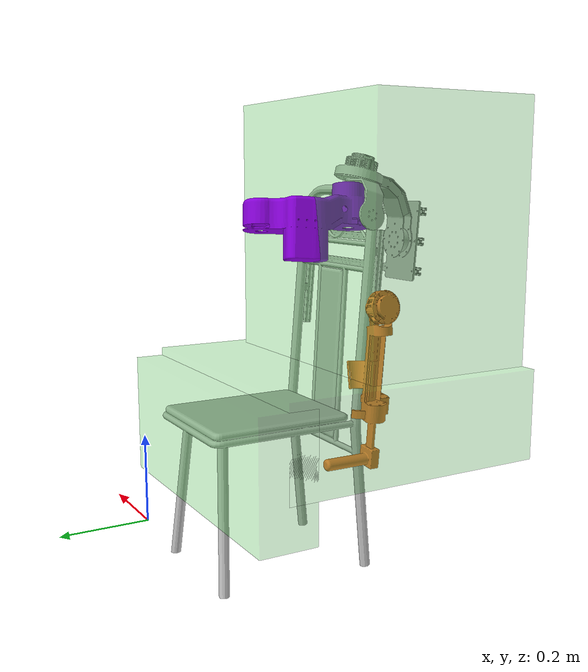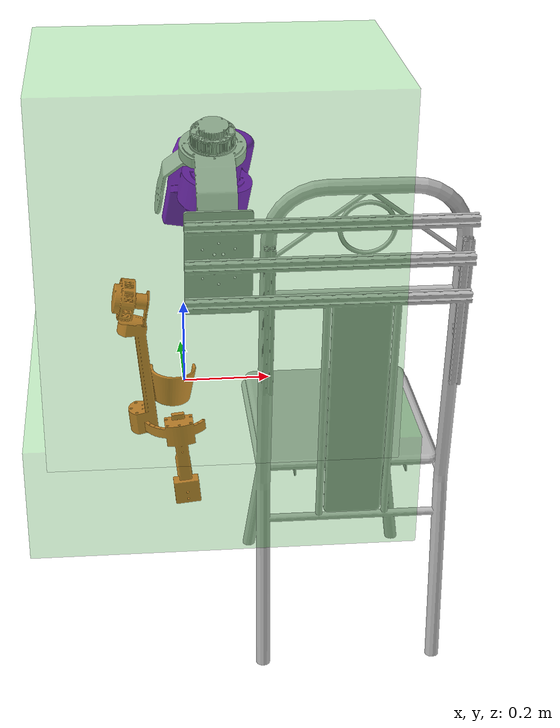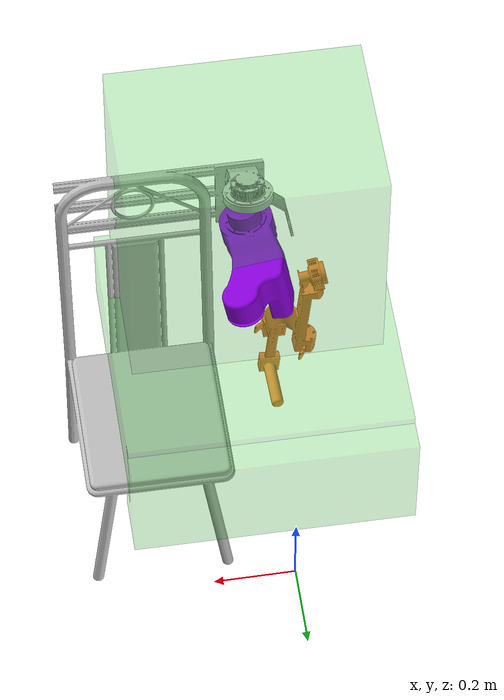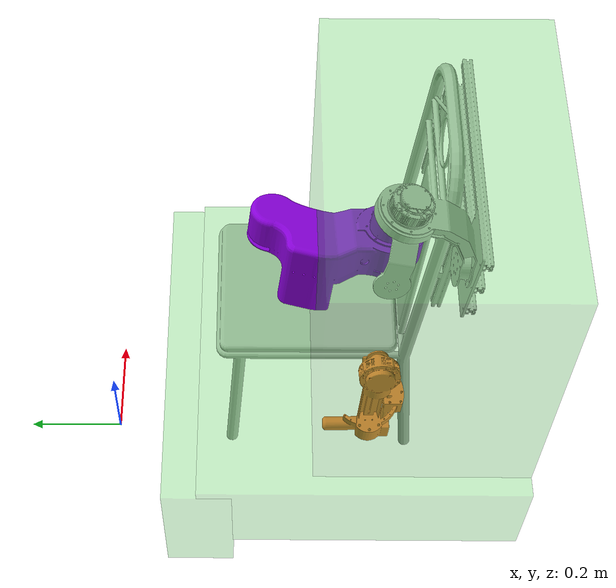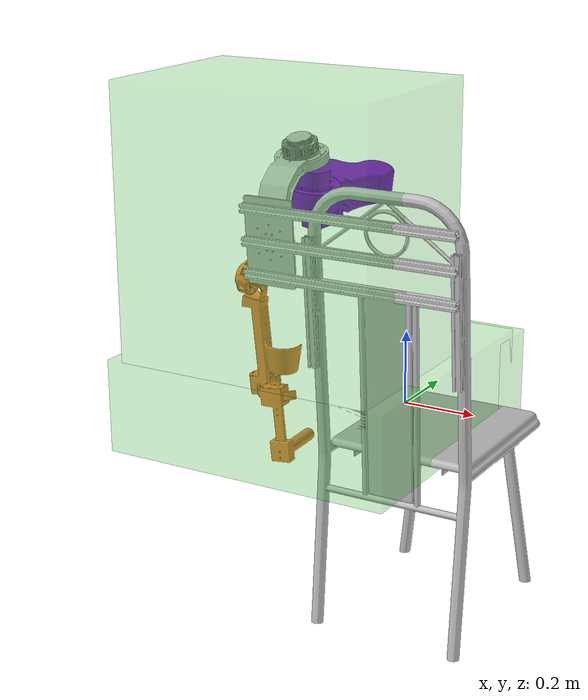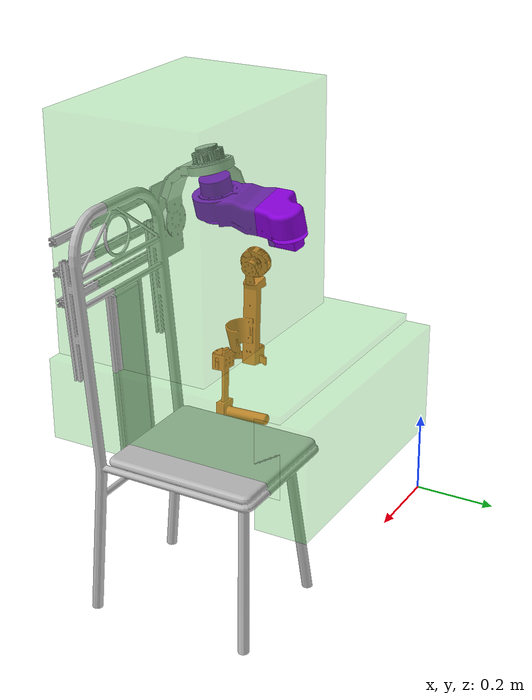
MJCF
<mujoco model="gim_arm">
  <compiler angle="radian"/>

  <asset>
    <mesh name="base_link" file="meshes/base_link.STL"/>
    <mesh name="shoulder_link" file="meshes/shoulder_link.STL"/>
    <mesh name="upper_arm_link" file="meshes/upper_arm_link.STL"/>
    <mesh name="lower_arm_link" file="meshes/lower_arm_link.STL"/>
  </asset>

  <worldbody>
    <geom name="body_than_dau" type="box" pos="0.03 -0.635 0.615" size="0.31000000000000005 0.215 0.33499999999999996" rgba="0.2 0.8 0.2 0.28" contype="2" conaffinity="1"/>
    <geom name="body_dui_ghe" type="box" pos="0.03 -0.52 0.21000000000000002" size="0.35 0.32999999999999996 0.11" rgba="0.2 0.8 0.2 0.28" contype="2" conaffinity="1"/>
    <geom name="body_cang_chan" type="box" pos="0.03 -0.19 0.15" size="0.35 0.07 0.15" rgba="0.2 0.8 0.2 0.28" contype="2" conaffinity="1"/>

    <geom pos="0 0 0" quat="0.999139 0.0414881 0 0" type="mesh" rgba="0.752941 0.752941 0.752941 1" mesh="base_link"/>
    <body name="shoulder_link" pos="0.031381 -0.538297 0.605919" quat="0.707244 0.0979564 0.692157 0.105496">
      <inertial pos="-0.166449 0.0056888 -0.0172849" quat="0.953505 0.00316386 -0.300899 -0.0166541" mass="0.190733" diaginertia="0.000256936 0.000237054 0.000102196"/>
      <joint name="base_joint" pos="0 0 0" axis="0.999316 -0.0310989 -0.0199989" range="-0.7121 1.0226" actuatorfrcrange="-5 5"/>
      <geom type="mesh" rgba="0.752941 0.752941 0.752941 1" mesh="shoulder_link"/>
      <body name="upper_arm_link" pos="-0.049966 0.001555 0.00099995" quat="0.589584 -0.488746 -0.405223 0.499311">
        <inertial pos="-0.0207367 0.102616 -0.0918424" quat="0.663565 -0.00524028 0.0607563 0.745629" mass="1.15563" diaginertia="0.00533537 0.00465501 0.00100501"/>
        <joint name="shoulder_joint" pos="0 0 0" axis="0 -1 0" range="-0.2366 1.3435" actuatorfrcrange="-40 40"/>
        <geom type="mesh" rgba="0.545098 0 0.870588 1" mesh="upper_arm_link"/>
        <body name="lower_arm_link" pos="-0.014232 0 -0.21358" quat="-0.474042 0.474045 -0.524673 -0.524674">
          <inertial pos="0.18527 0.00970989 0.0463326" quat="0.0339146 0.77458 0.0270247 0.630988" mass="0.846777" diaginertia="0.00187451 0.00160639 0.00058703"/>
          <joint name="elbow_joint" pos="0 0 0" axis="0 0 -1" range="-0.2336 1.7762" actuatorfrcrange="-5 5"/>
          <geom type="mesh" rgba="1 0.509804 0.196078 1" mesh="lower_arm_link"/>
        </body>
      </body>
    </body>
  </worldbody>
</mujoco>
